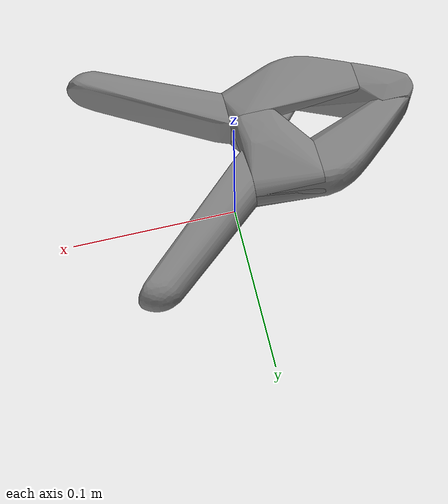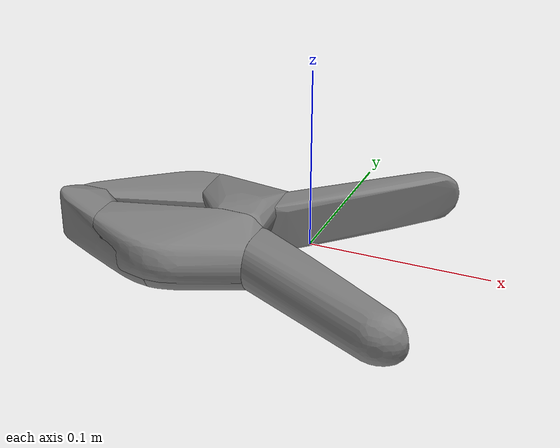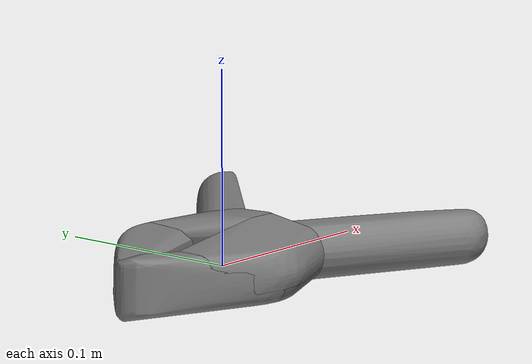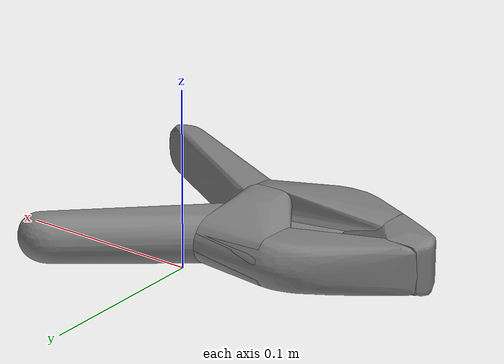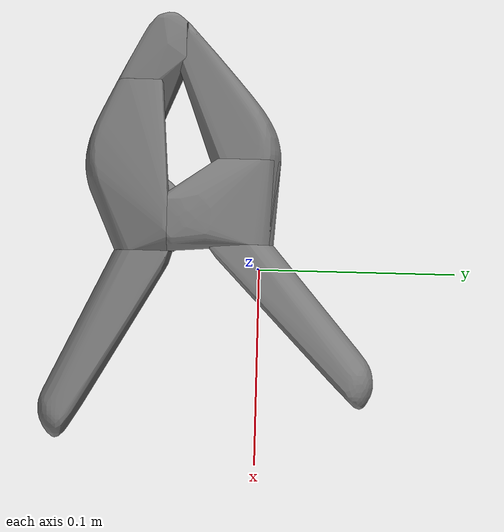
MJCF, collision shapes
<mujoco model="ycb_052_extra_large_clamp">
  <compiler meshdir="meshes" texturedir="meshes" angle="radian"/>
  <default>
    <default class="visual"><geom contype="0" conaffinity="0" group="2" density="0"/></default>
    <default class="collision"><geom group="3"/></default>
  </default>
  <asset>
    <texture name="ycb_052_extra_large_clamp_tex" type="2d" file="ycb_052_extra_large_clamp_texture.png"/>
    <material name="ycb_052_extra_large_clamp_mat" texture="ycb_052_extra_large_clamp_tex" specular="0.2" shininess="0.3"/>
    <mesh name="ycb_052_extra_large_clamp_visual" file="ycb_052_extra_large_clamp_visual.obj"/>
    <mesh name="ycb_052_extra_large_clamp_hull0" file="ycb_052_extra_large_clamp_hull0.obj"/>
    <mesh name="ycb_052_extra_large_clamp_hull1" file="ycb_052_extra_large_clamp_hull1.obj"/>
    <mesh name="ycb_052_extra_large_clamp_hull2" file="ycb_052_extra_large_clamp_hull2.obj"/>
    <mesh name="ycb_052_extra_large_clamp_hull3" file="ycb_052_extra_large_clamp_hull3.obj"/>
    <mesh name="ycb_052_extra_large_clamp_hull4" file="ycb_052_extra_large_clamp_hull4.obj"/>
    <mesh name="ycb_052_extra_large_clamp_hull5" file="ycb_052_extra_large_clamp_hull5.obj"/>
    <mesh name="ycb_052_extra_large_clamp_hull6" file="ycb_052_extra_large_clamp_hull6.obj"/>
    <mesh name="ycb_052_extra_large_clamp_hull7" file="ycb_052_extra_large_clamp_hull7.obj"/>
  </asset>
  <worldbody>
    <body name="object" pos="0 0 0">
      <freejoint name="object_free"/>
      <geom type="mesh" mesh="ycb_052_extra_large_clamp_visual" material="ycb_052_extra_large_clamp_mat" class="visual"/>
      <geom type="mesh" mesh="ycb_052_extra_large_clamp_hull0" class="collision"/>
      <geom type="mesh" mesh="ycb_052_extra_large_clamp_hull1" class="collision"/>
      <geom type="mesh" mesh="ycb_052_extra_large_clamp_hull2" class="collision"/>
      <geom type="mesh" mesh="ycb_052_extra_large_clamp_hull3" class="collision"/>
      <geom type="mesh" mesh="ycb_052_extra_large_clamp_hull4" class="collision"/>
      <geom type="mesh" mesh="ycb_052_extra_large_clamp_hull5" class="collision"/>
      <geom type="mesh" mesh="ycb_052_extra_large_clamp_hull6" class="collision"/>
      <geom type="mesh" mesh="ycb_052_extra_large_clamp_hull7" class="collision"/>
    </body>
  </worldbody>
</mujoco>
